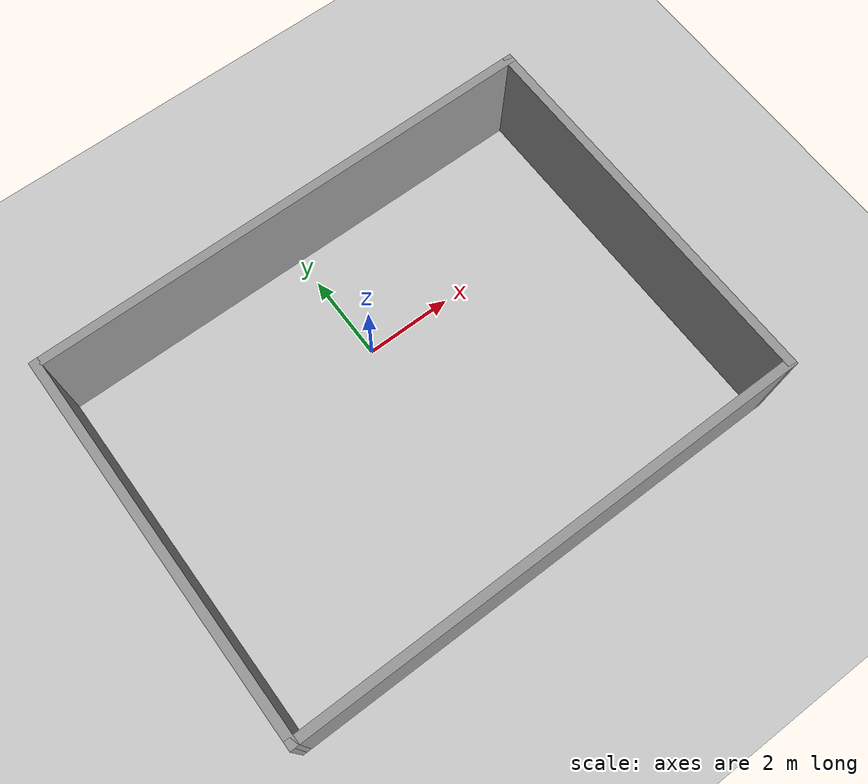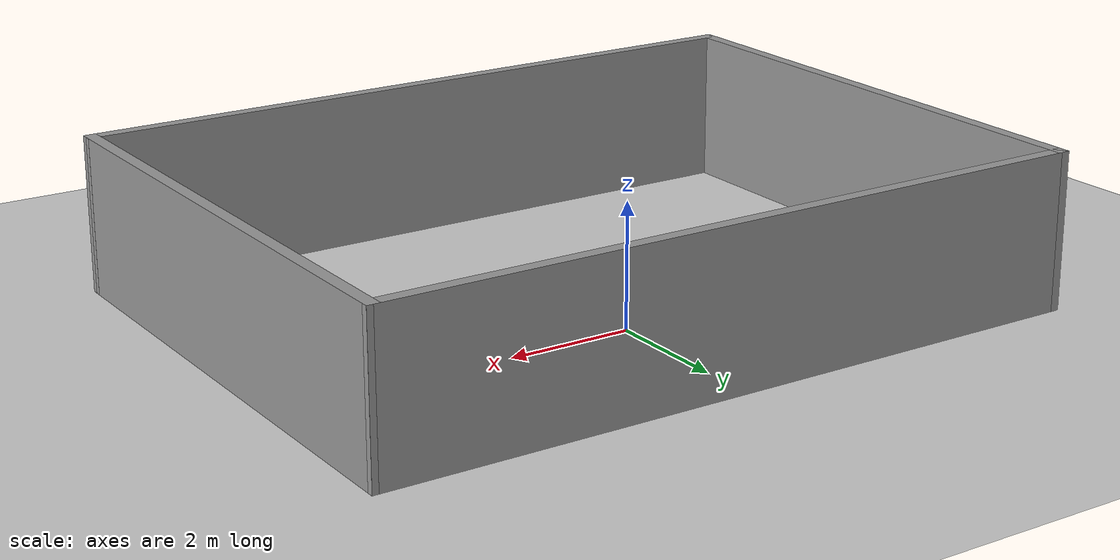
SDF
<?xml version="1.0" ?>
<sdf version="1.4">
    <world name="default">
        <include>
            <uri>model://ground_plane</uri>
        </include>
        <include>
            <uri>model://sun</uri>
        </include>
        <include>
            <uri>file:///home/mic/workspace/hydro/catkin_ws/src/youbot_ros_tools/youbot_gazebo/worlds/EmptyRoom</uri>
        </include>
  </world>
</sdf>

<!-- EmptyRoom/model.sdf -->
<sdf version='1.4'>
  <model name='EmptyRoom'>
    <link name='Wall_11'>
      <collision name='Wall_11_Collision'>
        <geometry>
          <box>
            <size>11.7974 0.2 2.5</size>
          </box>
        </geometry>
        <pose>0 0 1.25 0 -0 0</pose>
      </collision>
      <visual name='Wall_11_Visual'>
        <pose>0 0 1.25 0 -0 0</pose>
        <geometry>
          <box>
            <size>11.7974 0.2 2.5</size>
          </box>
        </geometry>
        <material>
          <script>
            <uri>file://media/materials/scripts/gazebo.material</uri>
            <name>Gazebo/Grey</name>
          </script>
        </material>
      </visual>
      <velocity_decay>
        <linear>0</linear>
        <angular>0</angular>
      </velocity_decay>
      <pose>-0.001182 -5.80988 0 0 -0 0.001715</pose>
    </link>
    <link name='Wall_12'>
      <collision name='Wall_12_Collision'>
        <geometry>
          <box>
            <size>8.80568 0.2 2.5</size>
          </box>
        </geometry>
        <pose>0 0 1.25 0 -0 0</pose>
      </collision>
      <visual name='Wall_12_Visual'>
        <pose>0 0 1.25 0 -0 0</pose>
        <geometry>
          <box>
            <size>8.80568 0.2 2.5</size>
          </box>
        </geometry>
        <material>
          <script>
            <uri>file://media/materials/scripts/gazebo.material</uri>
            <name>Gazebo/Grey</name>
          </script>
        </material>
      </visual>
      <velocity_decay>
        <linear>0</linear>
        <angular>0</angular>
      </velocity_decay>
      <pose>5.76764 -1.4972 0 0 -0 1.57774</pose>
    </link>
    <link name='Wall_13'>
      <collision name='Wall_13_Collision'>
        <geometry>
          <box>
            <size>11.7513 0.2 2.5</size>
          </box>
        </geometry>
        <pose>0 0 1.25 0 -0 0</pose>
      </collision>
      <visual name='Wall_13_Visual'>
        <pose>0 0 1.25 0 -0 0</pose>
        <geometry>
          <box>
            <size>11.7513 0.2 2.5</size>
          </box>
        </geometry>
        <material>
          <script>
            <uri>file://media/materials/scripts/gazebo.material</uri>
            <name>Gazebo/Grey</name>
          </script>
        </material>
      </visual>
      <velocity_decay>
        <linear>0</linear>
        <angular>0</angular>
      </velocity_decay>
      <pose>-0.037853 2.79559 0 0 0 -3.13987</pose>
    </link>
    <link name='Wall_14'>
      <collision name='Wall_14_Collision'>
        <geometry>
          <box>
            <size>8.80548 0.2 2.5</size>
          </box>
        </geometry>
        <pose>0 0 1.25 0 -0 0</pose>
      </collision>
      <visual name='Wall_14_Visual'>
        <pose>0 0 1.25 0 -0 0</pose>
        <geometry>
          <box>
            <size>8.80548 0.2 2.5</size>
          </box>
        </geometry>
        <material>
          <script>
            <uri>file://media/materials/scripts/gazebo.material</uri>
            <name>Gazebo/Grey</name>
          </script>
        </material>
      </visual>
      <velocity_decay>
        <linear>0</linear>
        <angular>0</angular>
      </velocity_decay>
      <pose>-5.80668 -1.51709 0 0 0 -1.56921</pose>
    </link>
    <static>1</static>
  </model>
</sdf>
